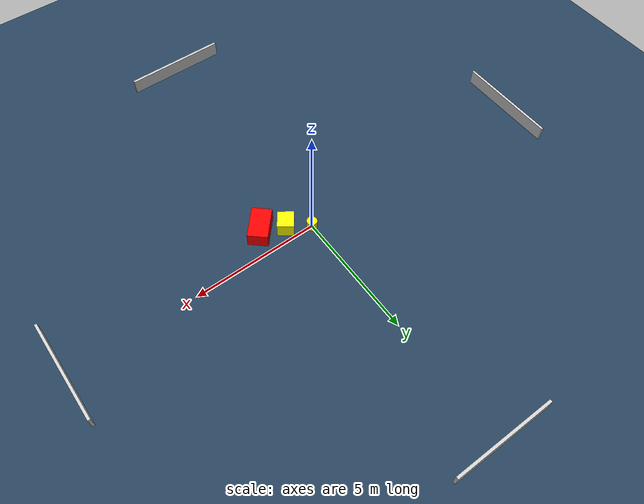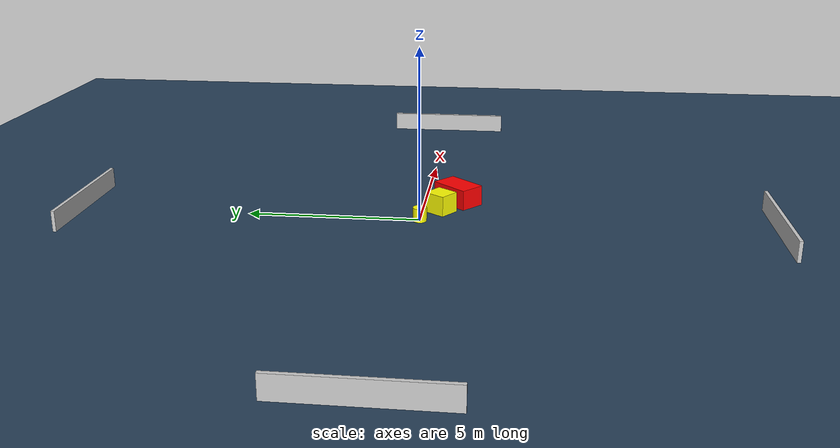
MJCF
<?xml version="1.0" ?>
<mujoco model="generated_environment">
  <option timestep="0.01" integrator="RK4" cone="elliptic"/>
  <default>
    <geom density="1"/>
  </default>
  <asset>
    <texture builtin="gradient" height="3072" name="skybox" rgb1="0.3 0.5 0.7" rgb2="0 0 0" type="skybox" width="512"/>
    <texture builtin="checker" height="300" name="groundplane" rgb1="0.2 0.3 0.4" rgb2="0.1 0.2 0.3" type="2d" width="300"/>
    <material name="groundplane" reflectance="0.2" texrepeat="5 5" texture="groundplane"/>
  </asset>
  <worldbody>
    <light dir="0 0 -1" directional="true" pos="0 0 1.5"/>
    <geom condim="3" friction="0.5 0.005 0.001" material="groundplane" name="floor" pos="0 0 0" size="0 0 0.05" type="plane"/>
    <body name="walls">
      <geom name="wall_1" condim="4" pos="-10.0 0.0 0.3" rgba="0.800000011920929 0.800000011920929 0.800000011920929 1.0" size="0.05 2.0 0.3" type="box"/>
      <geom name="wall_2" condim="4" pos="10.0 0.0 0.3" rgba="0.800000011920929 0.800000011920929 0.800000011920929 1.0" size="0.05 2.0 0.3" type="box"/>
      <geom name="wall_3" condim="4" pos="0.0 -10.0 0.3" rgba="0.800000011920929 0.800000011920929 0.800000011920929 1.0" size="2.0 0.05 0.3" type="box"/>
      <geom name="wall_4" condim="4" pos="0.0 10.0 0.3" rgba="0.800000011920929 0.800000011920929 0.800000011920929 1.0" size="2.0 0.05 0.3" type="box"/>
    </body>
    <body name="robot">
      <joint name="joint_x" type="slide" pos="0 0 0" axis="1 0 0"/>
      <joint name="joint_y" type="slide" pos="0 0 0" axis="0 1 0"/>
      <geom name="robot" type="cylinder" pos="0.0 0.0 0.2" size="0.2 0.2 0.0" mass="5.0" friction="1.0 0.005 0.0001" condim="4" rgba="1.0 1.0 0.0 1.0"/>
    </body>
    <body name="obstacle_1_movable">
      <geom name="obstacle_1_movable" condim="4" pos="0.8216397049154407 -0.5306169224675262 0.3" euler="0 0 324.17414020096595" friction="0.0 0.005 0.001" rgba="1.0 1.0 0.0 1.0" size="0.3127456221631649 0.33759008220559594 0.3" type="box" mass="0.1"/>
      <joint type="free"/>
    </body>
    <body name="obstacle_2_static">
      <geom name="obstacle_2_static" condim="4" pos="1.6711646519906294 -0.9693200021781417 0.3" euler="0 0 228.14971793778068" friction="0.0 0.005 0.001" rgba="1.0 0.0 0.0 1.0" size="0.6241174307974623 0.3858796331428558 0.3" type="box"/>
    </body>
  </worldbody>
  <actuator>
    <motor name="actuator_x" joint="joint_x" gear="1" ctrlrange="-1 1"/>
    <motor name="actuator_y" joint="joint_y" gear="1" ctrlrange="-1 1"/>
  </actuator>
</mujoco>
